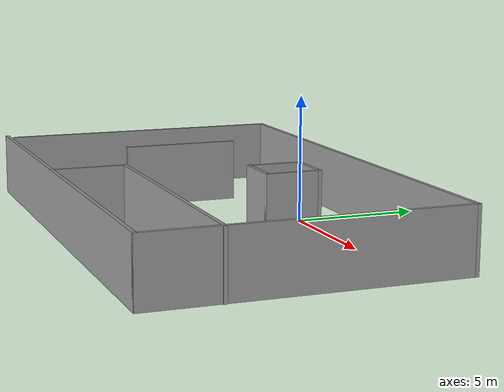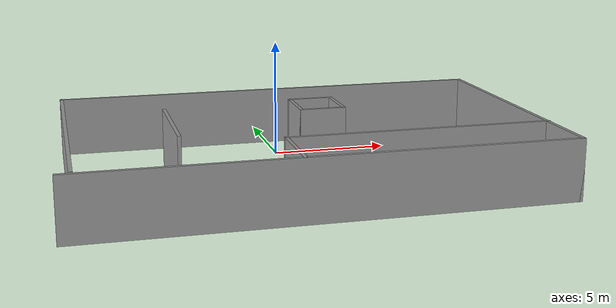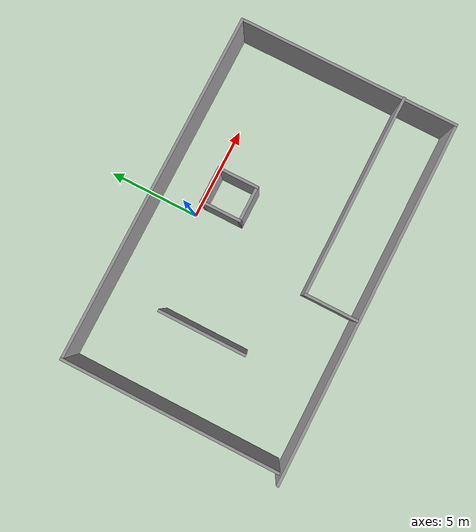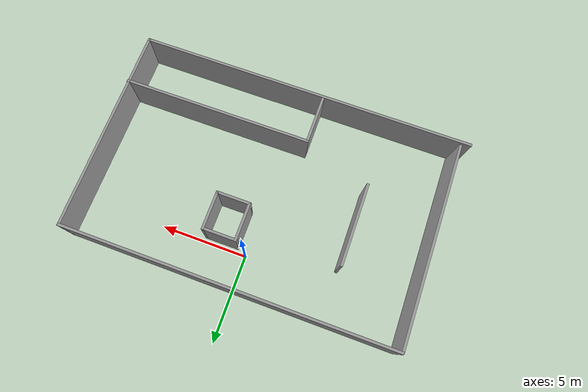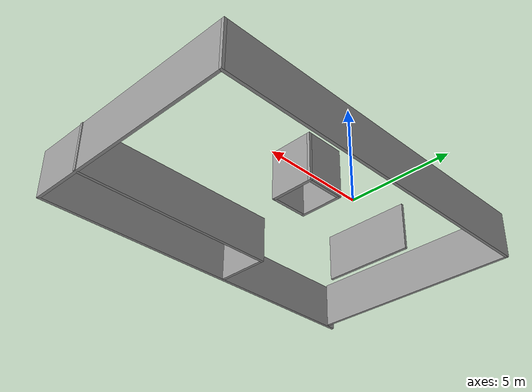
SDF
<?xml version='1.0'?>
<sdf version='1.7'>
  <model name='2023'>
    <pose>-0.006045 -3.80227 0 0 -0 0</pose>
    <link name='Wall_34'>
      <collision name='Wall_34_Collision'>
        <geometry>
          <box>
            <size>19.5 0.15 2.5</size>
          </box>
        </geometry>
        <pose>0 0 1.25 0 -0 0</pose>
      </collision>
      <visual name='Wall_34_Visual'>
        <pose>0 0 1.25 0 -0 0</pose>
        <geometry>
          <box>
            <size>19.5 0.15 2.5</size>
          </box>
        </geometry>
        <material>
          <script>
            <uri>file://media/materials/scripts/gazebo.material</uri>
            <name>Gazebo/Grey</name>
          </script>
          <ambient>1 1 1 1</ambient>
        </material>
        <meta>
          <layer>0</layer>
        </meta>
      </visual>
      <pose>-0.022103 -5.925 0 0 -0 0</pose>
    </link>
    <link name='Wall_36'>
      <collision name='Wall_36_Collision'>
        <geometry>
          <box>
            <size>12 0.15 2.5</size>
          </box>
        </geometry>
        <pose>0 0 1.25 0 -0 0</pose>
      </collision>
      <visual name='Wall_36_Visual'>
        <pose>0 0 1.25 0 -0 0</pose>
        <geometry>
          <box>
            <size>12 0.15 2.5</size>
          </box>
        </geometry>
        <material>
          <script>
            <uri>file://media/materials/scripts/gazebo.material</uri>
            <name>Gazebo/Grey</name>
          </script>
          <ambient>1 1 1 1</ambient>
        </material>
        <meta>
          <layer>0</layer>
        </meta>
      </visual>
      <pose>9.6529 -0 0 0 -0 1.5708</pose>
    </link>
    <link name='Wall_37'>
      <collision name='Wall_37_Collision'>
        <geometry>
          <box>
            <size>19 0.15 2.5</size>
          </box>
        </geometry>
        <pose>0 0 1.25 0 -0 0</pose>
      </collision>
      <visual name='Wall_37_Visual'>
        <pose>0 0 1.25 0 -0 0</pose>
        <geometry>
          <box>
            <size>19 0.15 2.5</size>
          </box>
        </geometry>
        <material>
          <script>
            <uri>file://media/materials/scripts/gazebo.material</uri>
            <name>Gazebo/Grey</name>
          </script>
          <ambient>1 1 1 1</ambient>
        </material>
        <meta>
          <layer>0</layer>
        </meta>
      </visual>
      <pose>0.227897 5.925 0 0 -0 3.14159</pose>
    </link>
    <link name='Wall_38'>
      <collision name='Wall_38_Collision'>
        <geometry>
          <box>
            <size>11.75 0.15 2.5</size>
          </box>
        </geometry>
        <pose>0 0 1.25 0 -0 0</pose>
      </collision>
      <visual name='Wall_38_Visual'>
        <pose>0 0 1.25 0 -0 0</pose>
        <geometry>
          <box>
            <size>11.75 0.15 2.5</size>
          </box>
        </geometry>
        <material>
          <script>
            <uri>file://media/materials/scripts/gazebo.material</uri>
            <name>Gazebo/Grey</name>
          </script>
          <ambient>1 1 1 1</ambient>
        </material>
        <meta>
          <layer>0</layer>
        </meta>
      </visual>
      <pose>-9.1971 0.125 0 0 -0 -1.5708</pose>
    </link>
    <link name='Wall_40'>
      <collision name='Wall_40_Collision'>
        <geometry>
          <box>
            <size>2.25 0.15 2.5</size>
          </box>
        </geometry>
        <pose>0 0 1.25 0 -0 0</pose>
      </collision>
      <visual name='Wall_40_Visual'>
        <pose>0 0 1.25 0 -0 0</pose>
        <geometry>
          <box>
            <size>2.25 0.15 2.5</size>
          </box>
        </geometry>
        <material>
          <script>
            <uri>file://media/materials/scripts/gazebo.material</uri>
            <name>Gazebo/Grey</name>
          </script>
          <ambient>1 1 1 1</ambient>
        </material>
        <meta>
          <layer>0</layer>
        </meta>
      </visual>
      <pose>0.581214 2.44679 0 0 -0 -1.5708</pose>
    </link>
    <link name='Wall_41'>
      <collision name='Wall_41_Collision'>
        <geometry>
          <box>
            <size>2 0.15 2.5</size>
          </box>
        </geometry>
        <pose>0 0 1.25 0 -0 0</pose>
      </collision>
      <visual name='Wall_41_Visual'>
        <pose>0 0 1.25 0 -0 0</pose>
        <geometry>
          <box>
            <size>2 0.15 2.5</size>
          </box>
        </geometry>
        <material>
          <script>
            <uri>file://media/materials/scripts/gazebo.material</uri>
            <name>Gazebo/Grey</name>
          </script>
          <ambient>1 1 1 1</ambient>
        </material>
        <meta>
          <layer>0</layer>
        </meta>
      </visual>
      <pose>1.50621 1.39679 0 0 -0 0</pose>
    </link>
    <link name='Wall_42'>
      <collision name='Wall_42_Collision'>
        <geometry>
          <box>
            <size>2.25 0.15 2.5</size>
          </box>
        </geometry>
        <pose>0 0 1.25 0 -0 0</pose>
      </collision>
      <visual name='Wall_42_Visual'>
        <pose>0 0 1.25 0 -0 0</pose>
        <geometry>
          <box>
            <size>2.25 0.15 2.5</size>
          </box>
        </geometry>
        <material>
          <script>
            <uri>file://media/materials/scripts/gazebo.material</uri>
            <name>Gazebo/Grey</name>
          </script>
          <ambient>1 1 1 1</ambient>
        </material>
        <meta>
          <layer>0</layer>
        </meta>
      </visual>
      <pose>2.43121 2.44679 0 0 -0 1.5708</pose>
    </link>
    <link name='Wall_43'>
      <collision name='Wall_43_Collision'>
        <geometry>
          <box>
            <size>2 0.15 2.5</size>
          </box>
        </geometry>
        <pose>0 0 1.25 0 -0 0</pose>
      </collision>
      <visual name='Wall_43_Visual'>
        <pose>0 0 1.25 0 -0 0</pose>
        <geometry>
          <box>
            <size>2 0.15 2.5</size>
          </box>
        </geometry>
        <material>
          <script>
            <uri>file://media/materials/scripts/gazebo.material</uri>
            <name>Gazebo/Grey</name>
          </script>
          <ambient>1 1 1 1</ambient>
        </material>
        <meta>
          <layer>0</layer>
        </meta>
      </visual>
      <pose>1.50621 3.49679 0 0 -0 3.14159</pose>
    </link>
    <link name='Wall_45'>
      <collision name='Wall_45_Collision'>
        <geometry>
          <box>
            <size>11 0.15 2.5</size>
          </box>
        </geometry>
        <pose>0 0 1.25 0 -0 0</pose>
      </collision>
      <visual name='Wall_45_Visual'>
        <pose>0 0 1.25 0 -0 0</pose>
        <geometry>
          <box>
            <size>11 0.15 2.5</size>
          </box>
        </geometry>
        <material>
          <script>
            <uri>file://media/materials/scripts/gazebo.material</uri>
            <name>Gazebo/Grey</name>
          </script>
          <ambient>1 1 1 1</ambient>
        </material>
        <meta>
          <layer>0</layer>
        </meta>
      </visual>
      <pose>4.2721 -3.04952 0 0 -0 3.14159</pose>
    </link>
    <link name='Wall_46'>
      <collision name='Wall_46_Collision'>
        <geometry>
          <box>
            <size>3 0.15 2.5</size>
          </box>
        </geometry>
        <pose>0 0 1.25 0 -0 0</pose>
      </collision>
      <visual name='Wall_46_Visual'>
        <pose>0 0 1.25 0 -0 0</pose>
        <geometry>
          <box>
            <size>3 0.15 2.5</size>
          </box>
        </geometry>
        <material>
          <script>
            <uri>file://media/materials/scripts/gazebo.material</uri>
            <name>Gazebo/Grey</name>
          </script>
          <ambient>1 1 1 1</ambient>
        </material>
        <meta>
          <layer>0</layer>
        </meta>
      </visual>
      <pose>-1.1529 -4.47452 0 0 -0 -1.5708</pose>
    </link>
    <link name='Wall_48'>
      <collision name='Wall_48_Collision'>
        <geometry>
          <box>
            <size>4.75 0.15 2.5</size>
          </box>
        </geometry>
        <pose>0 0 1.25 0 -0 0</pose>
      </collision>
      <visual name='Wall_48_Visual'>
        <pose>0 0 1.25 0 -0 0</pose>
        <geometry>
          <box>
            <size>4.75 0.15 2.5</size>
          </box>
        </geometry>
        <material>
          <script>
            <uri>file://media/materials/scripts/gazebo.material</uri>
            <name>Gazebo/Grey</name>
          </script>
          <ambient>1 1 1 1</ambient>
        </material>
        <meta>
          <layer>0</layer>
        </meta>
      </visual>
      <pose>-5.04739 0.535271 0 0 -0 1.5708</pose>
    </link>
    <static>1</static>
  </model>
</sdf>
